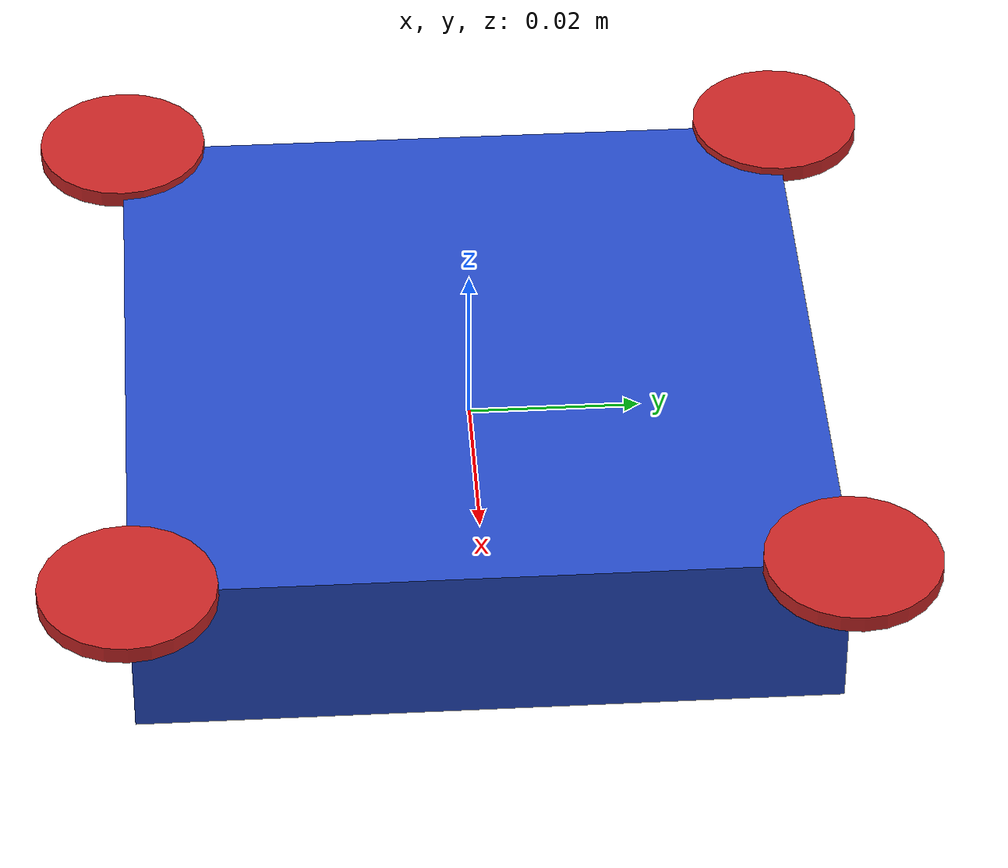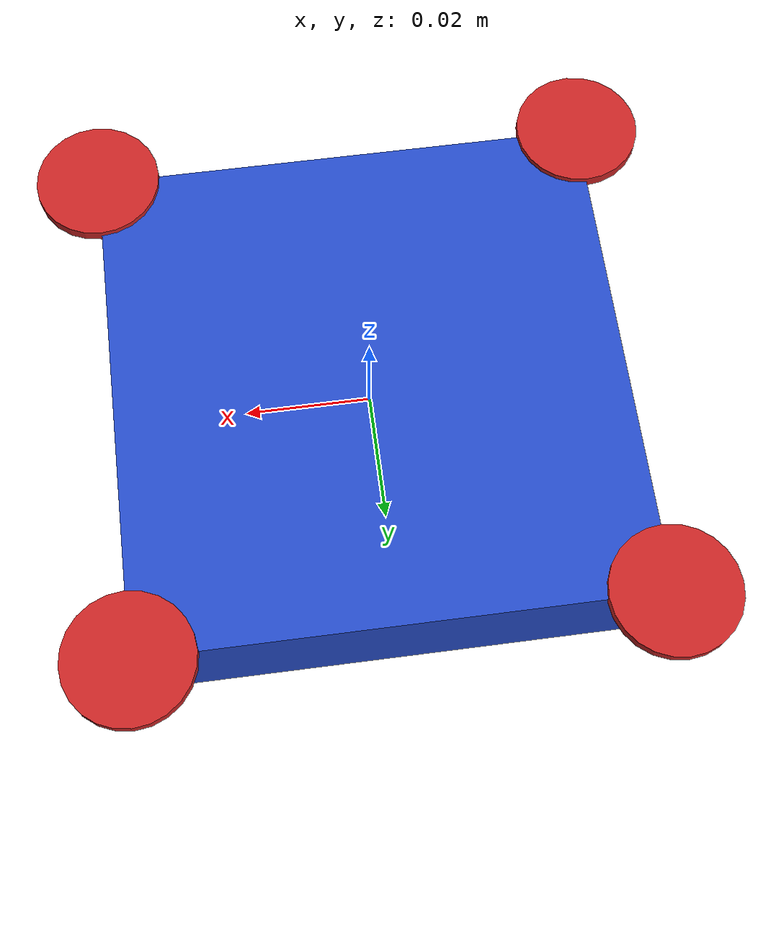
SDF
<?xml version="1.0"?>
<sdf version="1.6">
  <model name="microuwb_drone">

    <!-- ── Body ──────────────────────────────────────────────────────── -->
    <link name="base_link">
      <pose>0 0 0 0 0 0</pose>
      <inertial>
        <mass>0.05</mass>
        <inertia>
          <!-- Solid box 80mm x 80mm x 20mm, m=0.05 kg -->
          <ixx>2.83e-5</ixx>
          <ixy>0</ixy>
          <ixz>0</ixz>
          <iyy>2.83e-5</iyy>
          <iyz>0</iyz>
          <izz>5.33e-5</izz>
        </inertia>
      </inertial>
      <collision name="collision">
        <geometry>
          <box><size>0.080 0.080 0.020</size></box>
        </geometry>
      </collision>
      <visual name="visual">
        <geometry>
          <box><size>0.080 0.080 0.020</size></box>
        </geometry>
        <material>
          <script>
            <uri>file://media/materials/scripts/gazebo.material</uri>
            <name>Gazebo/Blue</name>
          </script>
        </material>
      </visual>

      <!-- IMU — frame_name=base_link avoids a spurious extra link -->
      <sensor name="imu_sensor" type="imu">
        <always_on>true</always_on>
        <update_rate>100</update_rate>
        <visualize>false</visualize>
        <plugin name="imu_plugin" filename="libgazebo_ros_imu_sensor.so">
          <ros>
            <remapping>~/out:=/microuwb/imu</remapping>
          </ros>
          <frame_name>base_link</frame_name>
        </plugin>
      </sensor>
    </link>

    <!-- ── Rotor FL (+x +y) ──────────────────────────────────────────── -->
    <link name="rotor_fl">
      <pose>0.040 0.040 0.010 0 0 0</pose>
      <inertial>
        <mass>0.002</mass>
        <inertia>
          <!-- Thin disk r=10mm h=2mm, m=0.002 kg -->
          <ixx>5.07e-8</ixx>
          <ixy>0</ixy>
          <ixz>0</ixz>
          <iyy>5.07e-8</iyy>
          <iyz>0</iyz>
          <izz>1.0e-7</izz>
        </inertia>
      </inertial>
      <collision name="collision">
        <geometry>
          <cylinder><radius>0.010</radius><length>0.002</length></cylinder>
        </geometry>
      </collision>
      <visual name="visual">
        <geometry>
          <cylinder><radius>0.010</radius><length>0.002</length></cylinder>
        </geometry>
        <material>
          <script>
            <uri>file://media/materials/scripts/gazebo.material</uri>
            <name>Gazebo/Red</name>
          </script>
        </material>
      </visual>
    </link>

    <!-- ── Rotor FR (+x -y) ──────────────────────────────────────────── -->
    <link name="rotor_fr">
      <pose>0.040 -0.040 0.010 0 0 0</pose>
      <inertial>
        <mass>0.002</mass>
        <inertia>
          <ixx>5.07e-8</ixx>
          <ixy>0</ixy>
          <ixz>0</ixz>
          <iyy>5.07e-8</iyy>
          <iyz>0</iyz>
          <izz>1.0e-7</izz>
        </inertia>
      </inertial>
      <collision name="collision">
        <geometry>
          <cylinder><radius>0.010</radius><length>0.002</length></cylinder>
        </geometry>
      </collision>
      <visual name="visual">
        <geometry>
          <cylinder><radius>0.010</radius><length>0.002</length></cylinder>
        </geometry>
        <material>
          <script>
            <uri>file://media/materials/scripts/gazebo.material</uri>
            <name>Gazebo/Red</name>
          </script>
        </material>
      </visual>
    </link>

    <!-- ── Rotor RL (-x +y) ──────────────────────────────────────────── -->
    <link name="rotor_rl">
      <pose>-0.040 0.040 0.010 0 0 0</pose>
      <inertial>
        <mass>0.002</mass>
        <inertia>
          <ixx>5.07e-8</ixx>
          <ixy>0</ixy>
          <ixz>0</ixz>
          <iyy>5.07e-8</iyy>
          <iyz>0</iyz>
          <izz>1.0e-7</izz>
        </inertia>
      </inertial>
      <collision name="collision">
        <geometry>
          <cylinder><radius>0.010</radius><length>0.002</length></cylinder>
        </geometry>
      </collision>
      <visual name="visual">
        <geometry>
          <cylinder><radius>0.010</radius><length>0.002</length></cylinder>
        </geometry>
        <material>
          <script>
            <uri>file://media/materials/scripts/gazebo.material</uri>
            <name>Gazebo/Red</name>
          </script>
        </material>
      </visual>
    </link>

    <!-- ── Rotor RR (-x -y) ──────────────────────────────────────────── -->
    <link name="rotor_rr">
      <pose>-0.040 -0.040 0.010 0 0 0</pose>
      <inertial>
        <mass>0.002</mass>
        <inertia>
          <ixx>5.07e-8</ixx>
          <ixy>0</ixy>
          <ixz>0</ixz>
          <iyy>5.07e-8</iyy>
          <iyz>0</iyz>
          <izz>1.0e-7</izz>
        </inertia>
      </inertial>
      <collision name="collision">
        <geometry>
          <cylinder><radius>0.010</radius><length>0.002</length></cylinder>
        </geometry>
      </collision>
      <visual name="visual">
        <geometry>
          <cylinder><radius>0.010</radius><length>0.002</length></cylinder>
        </geometry>
        <material>
          <script>
            <uri>file://media/materials/scripts/gazebo.material</uri>
            <name>Gazebo/Red</name>
          </script>
        </material>
      </visual>
    </link>

    <!-- ── Joints (fixed — eliminates ODE instability from locked revolute DoF) ── -->
    <joint name="joint_fl" type="fixed">
      <parent>base_link</parent>
      <child>rotor_fl</child>
    </joint>

    <joint name="joint_fr" type="fixed">
      <parent>base_link</parent>
      <child>rotor_fr</child>
    </joint>

    <joint name="joint_rl" type="fixed">
      <parent>base_link</parent>
      <child>rotor_rl</child>
    </joint>

    <joint name="joint_rr" type="fixed">
      <parent>base_link</parent>
      <child>rotor_rr</child>
    </joint>

    <!-- ── Ground truth odometry (relay node converts to PoseStamped) ── -->
    <plugin name="p3d_plugin" filename="libgazebo_ros_p3d.so">
      <ros>
        <namespace>/drone</namespace>
      </ros>
      <body_name>base_link</body_name>
      <frame_name>world</frame_name>
      <update_rate>100.0</update_rate>
    </plugin>

    <!-- ── Single body wrench: force.z=thrust (body-Z), torque.xyz=attitude ── -->
    <plugin name="body_wrench" filename="libgazebo_ros_force.so">
      <ros>
        <namespace>/microuwb</namespace>
        <remapping>gazebo_ros_force:=body_wrench</remapping>
      </ros>
      <link_name>base_link</link_name>
      <force_frame>link</force_frame>
    </plugin>

  </model>
</sdf>
